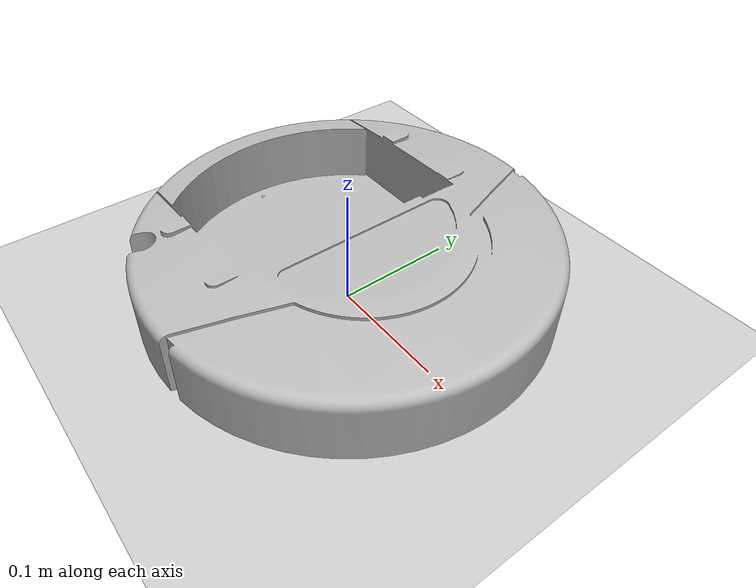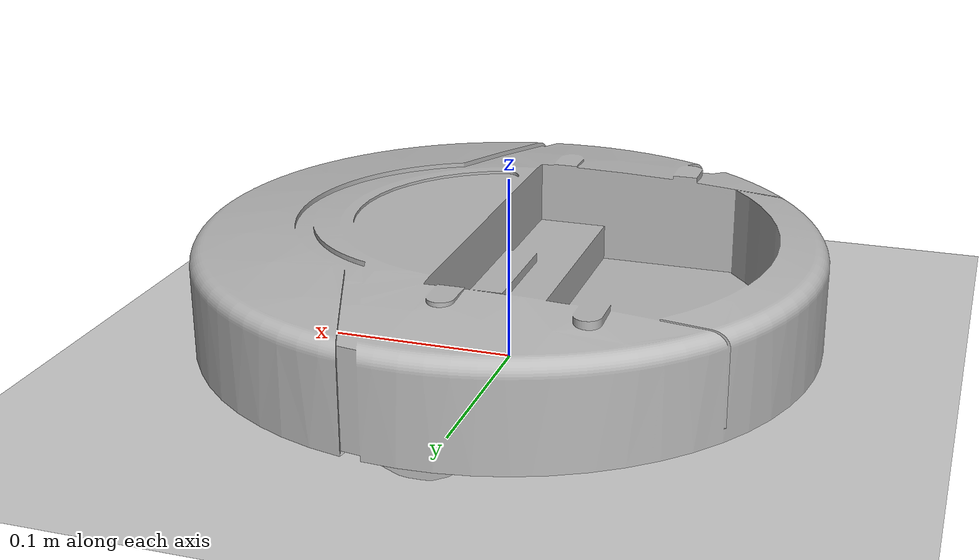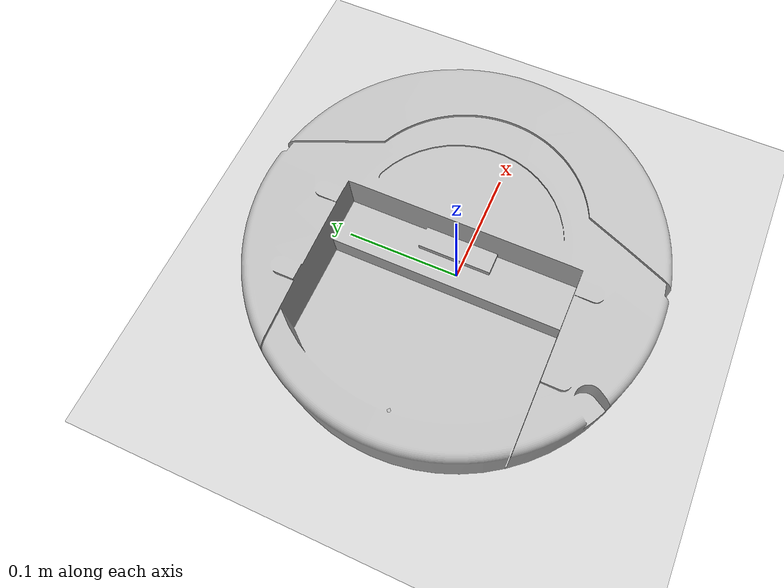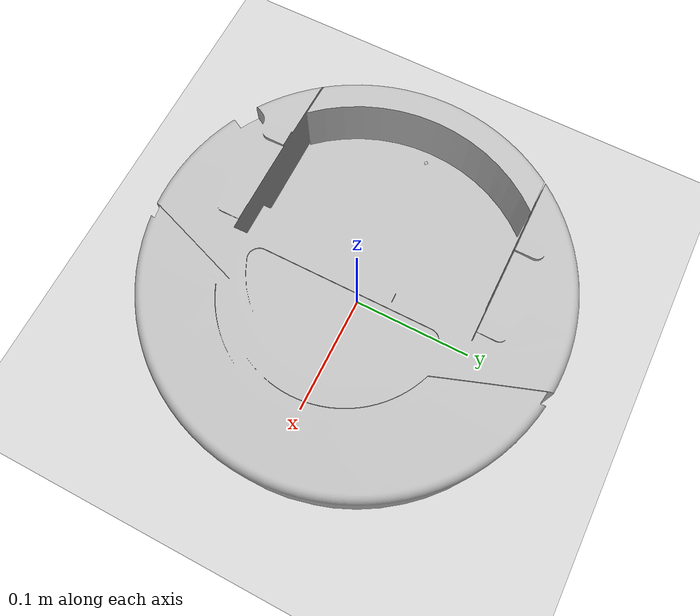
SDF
<?xml version="1.0"?>
<sdf version="1.5">
  <world name="default">

    <!-- Ground Plane -->
    <include>
      <uri>model://mygroundplane</uri>
    </include>

    <include>
      <uri>model://sun</uri>
    </include>

<model name="roomba1">
    <include>
		<uri>model://roomba1</uri>
    </include>

	<plugin name="roombacircle" filename="libroombacircle.so"/>
</model>

<model name="roomba2">
	<include>
		<uri>model://roomba1</uri>
	</include>
	<plugin name ="roombacircle2" filename="libroombacircle2.so"/>
</model>

<model name="roomba3">
	<include>
		<uri>model://roomba1</uri>
	</include>
	<plugin name ="roombacircle3" filename="libroombacircle3.so"/>
</model>

<model name="roomba4">
	<include>
		<uri>model://roomba1</uri>
	</include>
	<plugin name ="roombacircle4" filename="libroombacircle4.so"/>
</model>

<model name="t1">
	<include>
		<uri>model://roomba1</uri>
	</include>
	<plugin name ="target1" filename="libtarget1.so"/>
</model>

<model name="t2">
	<include>
		<uri>model://roomba1</uri>
	</include>
	<plugin name ="target2" filename="libtarget2.so"/>
</model>

<model name="t3">
	<include>
		<uri>model://roomba1</uri>
	</include>
	<plugin name ="target3" filename="libtarget3.so"/>
</model>

<model name="t4">
	<include>
		<uri>model://roomba1</uri>
	</include>
	<plugin name ="target4" filename="libtarget4.so"/>
</model>
<model name="t5">
	<include>
		<uri>model://roomba1</uri>
	</include>
	<plugin name ="target5" filename="libtarget5.so"/>
</model>

<model name="t6">
	<include>
		<uri>model://roomba1</uri>
	</include>
	<plugin name ="target6" filename="libtarget6.so"/>
</model>
<model name="t7">
	<include>
		<uri>model://roomba1</uri>
	</include>
	<plugin name ="target7" filename="libtarget7.so"/>
</model>

<model name="t8">
	<include>
		<uri>model://roomba1</uri>
	</include>
	<plugin name ="target8" filename="libtarget8.so"/>
</model>

<model name="t10">
	<include>
		<uri>model://roomba1</uri>
	</include>
	<plugin name ="target10" filename="libtarget10.so"/>
</model>

<model name="t9">
	<include>
		<uri>model://roomba1</uri>
	</include>
	<plugin name ="target9" filename="libtarget9.so"/>
</model>

  </world>
</sdf>

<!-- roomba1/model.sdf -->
<sdf version="1.5">
  <model name="roomba1">
    <link name="base">
      <inertial>
        <pose>0.001453 -0.000453 0.029787 0 0 0</pose>
        <inertia>
          <ixx>0.058640</ixx>
          <ixy>0.000124</ixy>
          <ixz>0.000615</ixz>
          <iyy>0.058786</iyy>
          <iyz>0.000014</iyz>
          <izz>1.532440</izz>
        </inertia>
        <mass>2.234000</mass>
      </inertial>
      <collision name="base_collision">
        <pose>0 0 0.047800 0 0 0</pose>
        <geometry>
          <cylinder>
            <radius>0.016495</radius>
            <length>0.061163</length>
          </cylinder>
        </geometry>
      </collision>
      <visual name="base_visual">
        <pose>0 0 0.047800 0 0 0</pose>
        <geometry>
          <mesh>
            <uri>model://create/meshes/create_body.dae</uri>
          </mesh>
        </geometry>
      </visual>
      <collision name="front_wheel_collision">
        <pose>0.130000 0 0.017000 0 1.570700 1.570700</pose>
        <geometry>
          <sphere>
            <radius>0.018000</radius>
          </sphere>
        </geometry>
        <surface>
          <friction>
            <ode>
              <mu>0</mu>
              <mu2>0</mu2>
              <fdir1>0 0 0</fdir1>
              <slip1>0</slip1>
              <slip2>0</slip2>
            </ode>
          </friction>
        </surface>
      </collision>
      <visual name="front_wheel_visual">
        <pose>0.130000 0 0.017000 0 1.570700 1.570700</pose>
        <geometry>
          <sphere>
            <radius>0.009000</radius>
          </sphere>
        </geometry>
      </visual>
      <collision name="rear_wheel_collision">
        <pose>-0.13 0 0.017 0 1.5707 1.5707</pose>
        <geometry>
          <sphere>
            <radius>0.015000</radius>
          </sphere>
        </geometry>
        <surface>
          <friction>
            <ode>
              <mu>0</mu>
              <mu2>0</mu2>
              <fdir1>0 0 0</fdir1>
              <slip1>0</slip1>
              <slip2>0</slip2>
            </ode>
          </friction>
        </surface>
      </collision>
      <visual name="rear_wheel_visual">
        <pose>-0.130000 0 0.017000 0 1.570700 1.570700</pose>
        <geometry>
          <sphere>
            <radius>0.007500</radius>
          </sphere>
        </geometry>
      </visual>
      <sensor name="left_cliff_sensor" type="ray">
        <pose>0.070000 0.140000 0.027000 0 1.570790 0</pose>
        <ray>
          <scan>
            <horizontal>
              <samples>1</samples>
              <resolution>1.000000</resolution>
              <min_angle>0</min_angle>
              <max_angle>0</max_angle>
            </horizontal>
          </scan>
          <range>
            <min>0.010000</min>
            <max>0.040000</max>
            <resolution>0.100000</resolution>
          </range>
        </ray>
      </sensor>
      <sensor name="leftfront_cliff_sensor" type="ray">
        <pose>0.150000 0.040000 0.027000 0 1.570790 0</pose>
        <ray>
          <scan>
            <horizontal>
              <samples>1</samples>
              <resolution>1.000000</resolution>
              <min_angle>0</min_angle>
              <max_angle>0</max_angle>
            </horizontal>
          </scan>
          <range>
            <min>0.010000</min>
            <max>0.040000</max>
            <resolution>0.100000</resolution>
          </range>
        </ray>
      </sensor>
      <sensor name="right_cliff_sensor" type="ray">
        <pose>0.070000 -0.140000 0.027000 0 1.570790 0</pose>
        <ray>
          <scan>
            <horizontal>
              <samples>1</samples>
              <resolution>1.000000</resolution>
              <min_angle>0</min_angle>
              <max_angle>0</max_angle>
            </horizontal>
          </scan>
          <range>
            <min>0.010000</min>
            <max>0.040000</max>
            <resolution>0.100000</resolution>
          </range>
        </ray>
      </sensor>
      <sensor name="rightfront_cliff_sensor" type="ray">
        <pose>0.150000 -0.040000 0.027000 0 1.570790 0</pose>
        <ray>
          <scan>
            <horizontal>
              <samples>1</samples>
              <resolution>1.000000</resolution>
              <min_angle>0</min_angle>
              <max_angle>0</max_angle>
            </horizontal>
          </scan>
          <range>
            <min>0.010000</min>
            <max>0.040000</max>
            <resolution>0.100000</resolution>
          </range>
        </ray>
      </sensor>
      <sensor name="wall_sensor" type="ray">
        <pose>0.090000 -0.120000 0.059000 0 0 -1.000000</pose>
        <ray>
          <scan>
            <horizontal>
              <samples>1</samples>
              <resolution>1.000000</resolution>
              <min_angle>0</min_angle>
              <max_angle>0</max_angle>
            </horizontal>
          </scan>
          <range>
            <min>0.016000</min>
            <max>0.040000</max>
            <resolution>0.100000</resolution>
          </range>
        </ray>
      </sensor>
    </link>
    <link name="left_wheel">
      <pose>0 0.130000 0.032000 0 0 0</pose>
      <inertial>
        <inertia>
          <ixx>0.001000</ixx>
          <ixy>0</ixy>
          <ixz>0</ixz>
          <iyy>0.001000</iyy>
          <iyz>0</iyz>
          <izz>0.001000</izz>
        </inertia>
        <mass>0.010000</mass>
      </inertial>
      <collision name="collision">
        <pose>0 0 0 0 1.570700 1.570700</pose>
        <geometry>
          <cylinder>
            <radius>0.033000</radius>
            <length>0.023000</length>
          </cylinder>
        </geometry>
        <surface>
          <friction>
            <ode>
              <mu>10</mu>
              <mu2>10</mu2>
              <fdir1>0 0 0</fdir1>
              <slip1>0</slip1>
              <slip2>0</slip2>
            </ode>
          </friction>
        </surface>
      </collision>
      <visual name="visual">
        <pose>0 0 0 0 1.570700 1.570700</pose>
        <geometry>
          <cylinder>
            <radius>0.033000</radius>
            <length>0.023000</length>
          </cylinder>
        </geometry>
      </visual>
    </link>
    <link name="right_wheel">
      <pose>0 -0.130000 0.032000 0 0 0</pose>
      <inertial>
        <inertia>
          <ixx>0.001000</ixx>
          <ixy>0</ixy>
          <ixz>0</ixz>
          <iyy>0.001000</iyy>
          <iyz>0</iyz>
          <izz>0.001000</izz>
        </inertia>
        <mass>0.010000</mass>
      </inertial>
      <collision name="collision">
        <pose>0 0 0 0 1.570700 1.570700</pose>
        <geometry>
          <cylinder>
            <radius>0.033000</radius>
            <length>0.023000</length>
          </cylinder>
        </geometry>
        <surface>
          <friction>
            <ode>
              <mu>10</mu>
              <mu2>10</mu2>
              <fdir1>0 0 0</fdir1>
              <slip1>0</slip1>
              <slip2>0</slip2>
            </ode>
          </friction>
        </surface>
      </collision>
      <visual name="visual">
        <pose>0 0 0 0 1.570700 1.570700</pose>
        <geometry>
          <cylinder>
            <radius>0.033000</radius>
            <length>0.023000</length>
          </cylinder>
        </geometry>
      </visual>
    </link>
    <joint name="left_wheel" type="revolute">
      <parent>base</parent>
      <child>left_wheel</child>
      <axis>
        <xyz>0 1 0</xyz>
        <use_parent_model_frame>true</use_parent_model_frame>
      </axis>
    </joint>
    <joint name="right_wheel" type="revolute">
      <parent>base</parent>
      <child>right_wheel</child>
      <axis>
        <xyz>0 1 0</xyz>
        <use_parent_model_frame>true</use_parent_model_frame>
      </axis>
    </joint>
  </model>
</sdf>

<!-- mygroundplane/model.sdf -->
<sdf version="1.4">
<model name="mygroundplane">
  <static>true</static>
    <link name="link">
      <collision name="collision">
        <geometry>
          <plane>
            <normal>0 0 1</normal>
            <size>100 100</size>
          </plane>
        </geometry>
        <surface>
          <friction>
            <ode>
              <mu>100</mu>
              <mu2>50</mu2>
            </ode>
          </friction>
        </surface>
      </collision>
      <visual name="visual">
        <cast_shadows>false</cast_shadows>
        <geometry>
          <plane>
            <normal>0 0 1</normal>
            <size>100 100</size>
          </plane>
        </geometry>
        <material>
          <script>
            <uri>model://mygroundplane/materials/scripts</uri>
            <uri>model://mygroundplane/materials/textures</uri>
            <name>MyGroundPlane/Image</name>
          </script>
        </material>
      </visual>
    </link>
  </model>
</sdf>
